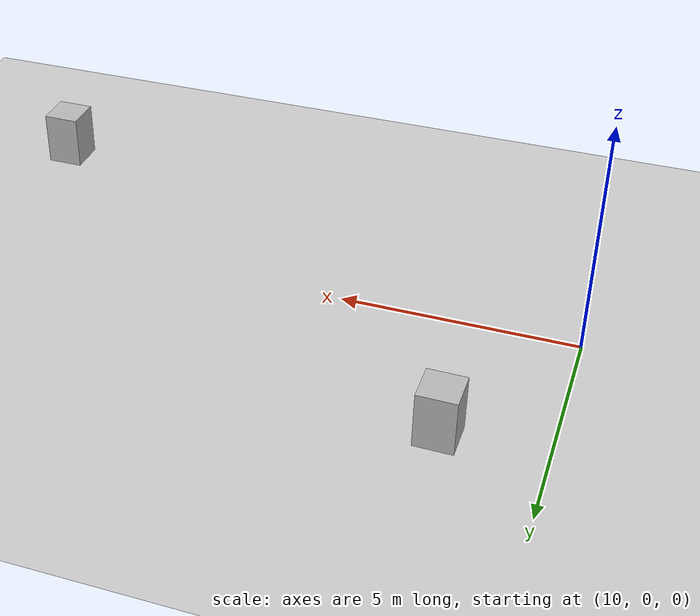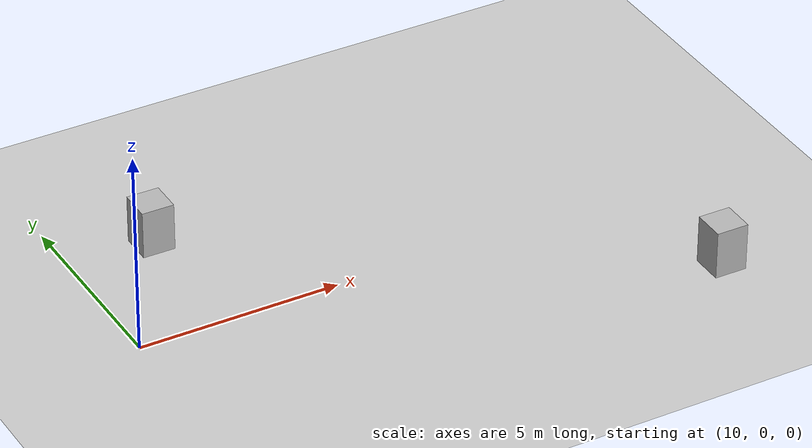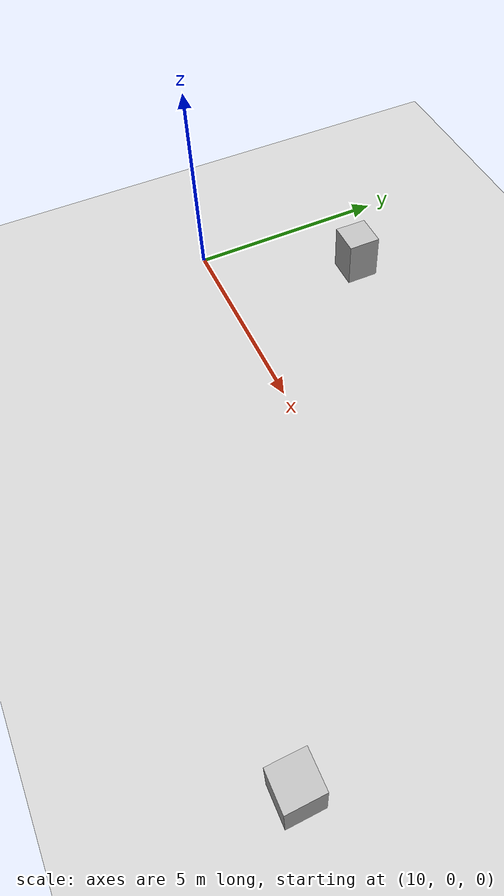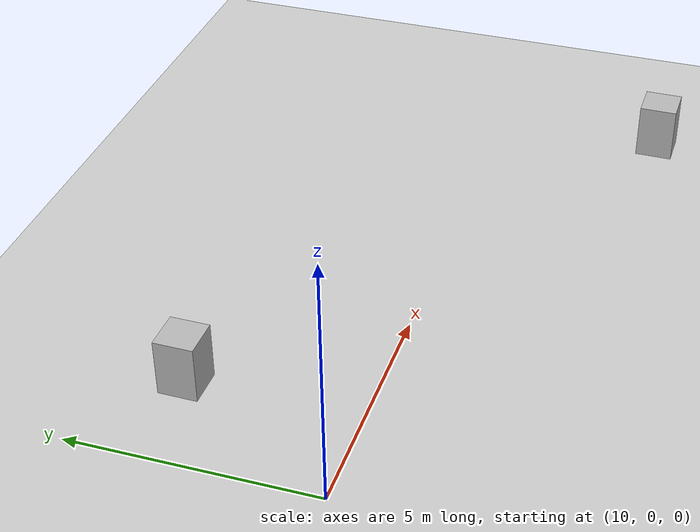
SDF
<?xml version="1.0"?>
<sdf version="1.6">
  <world name="v2-04g-p2-q1-qual-braking-v130-s5334">
    <gravity>0 0 -9.81</gravity>
    <physics name="v2_deterministic" type="ode">
      <max_step_size>0.002</max_step_size>
      <real_time_update_rate>500</real_time_update_rate>
    </physics>
    <include>
      <uri>model://sun</uri>
    </include>
    <include>
      <uri>model://ground_plane</uri>
    </include>
    <model name="cruise-left">
      <static>true</static>
      <pose>12.058917128 3.485694112 0.600000000 0 0 -0.009778229</pose>
      <link name="link">
        <collision name="collision">
          <geometry>
            <box>
              <size>0.800000 0.800000 1.200000</size>
            </box>
          </geometry>
        </collision>
        <visual name="visual">
          <geometry>
            <box>
              <size>0.800000 0.800000 1.200000</size>
            </box>
          </geometry>
        </visual>
      </link>
    </model>
    <model name="cruise-right">
      <static>true</static>
      <pose>22.993013129 -3.541550559 0.600000000 0 0 -0.008767151</pose>
      <link name="link">
        <collision name="collision">
          <geometry>
            <box>
              <size>0.800000 0.800000 1.200000</size>
            </box>
          </geometry>
        </collision>
        <visual name="visual">
          <geometry>
            <box>
              <size>0.800000 0.800000 1.200000</size>
            </box>
          </geometry>
        </visual>
      </link>
    </model>
  </world>
</sdf>
